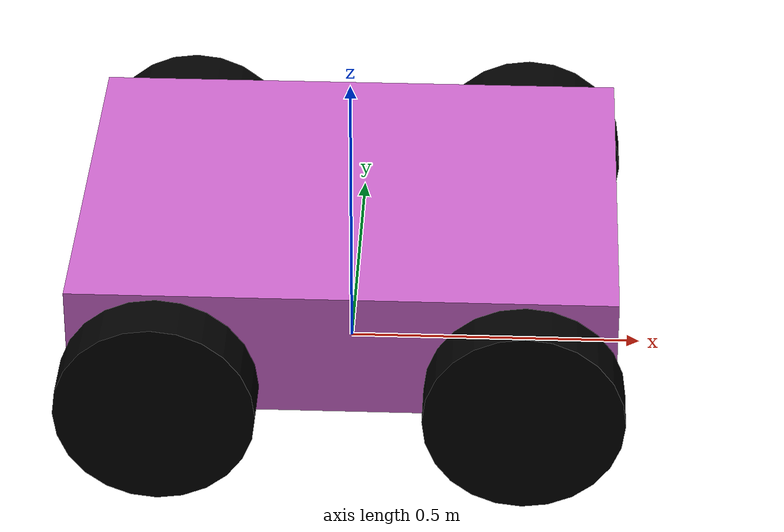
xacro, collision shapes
<?xml version="1.0"?>
<robot xmlns:xacro="http://www.ros.org/wiki/xacro" name="rover">

<xacro:property name="constant" value="0.083"/>
<xacro:property name="mass" value="1.0"/>
<xacro:property name="width" value="0.9"/>
<xacro:property name="height" value="0.22"/>
<xacro:property name="depth" value="0.7"/>

<material name="purple">
        <color rgba="0.8 0.4 0.8 1.0"/>
</material>

<material name="black">
        <color rgba="0 0 0 1"/>
</material>

<link name="base_footprint"/>

<link name="base_link">
    <inertial>
        <origin xyz="0.0 0.0 0.0" rpy="1.57 0.0 0.0"/>
        <mass value="1.0"/>
        <inertia ixx="${constant * mass * (height * height + depth * depth)}" ixy="0.0" ixz="0.0"
                 iyy="${constant * mass * (width * width + depth * depth)}" iyz="0.0"
                 izz="${constant * mass * (width * width + height * height)}"/>
    </inertial>
    <visual name="">
        <origin xyz="0.0 0.0 0.06" rpy="0.0 0.0 0.0"/>
        <geometry>
            <box size="0.9 0.7 0.22"/>
        </geometry>
        <material name="purple"/>
    </visual>
    <collision>
        <origin xyz="0.0 0.0 0.06" rpy="0.0 0.0 0.0"/>
        <geometry>
            <box size="0.9 0.7 0.22"/>
        </geometry>
    </collision>
</link>

<gazebo reference="base_link">
    <material>Gazebo/Purple</material>
</gazebo>

<joint name="base_joint" type="fixed">
    <origin xyz="0.0 0.0 0.135" rpy="0.0 0.0 0.0"/>
    <parent link="base_footprint"/>
    <child link="base_link"/>
    <axis xyz="0.0 0.0 0.0"/>
</joint>

<!-- All Wheel links and joints -->

<xacro:macro name="wheel_l" params="name x y">

    <link name="wheel_${name}_link">
        <inertial>
            <origin xyz="0 0 0" />
            <mass value="0.1" />
            <inertia ixx="${0.083 * 0.1 * (3 * 0.165 * 0.165 + 0.09 * 0.09)}" ixy="0.0" ixz="0.0"
                    iyy="${0.083 * 0.1 * (3 * 0.165 * 0.165 + 0.09 * 0.09)}" iyz="0.0"
                    izz="${0.083 * 0.1 * 0.165 * 0.165}" />
        </inertial>
        <visual name="">
            <origin xyz="0.0 0.0 0.0" rpy="0.0 0.0 0.0"/>
            <geometry>
                <mesh filename="package://mobile_robot/meshes/left_tire.stl" scale="0.005 0.005 0.005"/>
            </geometry>
            <material name="black"/>
        </visual>
        <collision>
            <origin xyz="0 0 0" rpy="1.57 0 0"/>
            <geometry>
                <cylinder length="0.09" radius="0.165"/>
            </geometry>
        </collision>
    </link>

    <joint name="wheel_${name}_joint" type="continuous">
        <origin xyz="${x} ${y} .0" rpy="0 0.0 0.0"/>
        <parent link="base_link"/>
        <child link="wheel_${name}_link"/>
        <axis xyz=".0 1.0 .0"/>
    </joint>

</xacro:macro>

<xacro:macro name="wheel_r" params="name x y">

    <link name="wheel_${name}_link">
        <inertial>
            <origin xyz="0 0 0" />
            <mass value="0.1" />
            <inertia ixx="${0.083 * 0.1 * (3 * 0.165 * 0.165 + 0.09 * 0.09)}" ixy="0.0" ixz="0.0"
                    iyy="${0.083 * 0.1 * (3 * 0.165 * 0.165 + 0.09 * 0.09)}" iyz="0.0"
                    izz="${0.083 * 0.1 * 0.165 * 0.165}" />
        </inertial>
        <visual name="">
            <origin xyz="0.0 0.0 0.0" rpy="0.0 0.0 0.0"/>
            <geometry>
                <mesh filename="package://mobile_robot/meshes/right_tire.stl" scale="0.005 0.005 0.005"/>
            </geometry>
            <material name="black"/>
        </visual>
        <collision>
            <origin xyz="0 0 0" rpy="1.57 0 0"/>
            <geometry>
                <cylinder length="0.09" radius="0.165"/>
            </geometry>
        </collision>
    </link>

    <joint name="wheel_${name}_joint" type="continuous">
        <origin xyz="${x} ${y} .0" rpy="0 0.0 0.0"/>
        <parent link="base_link"/>
        <child link="wheel_${name}_link"/>
        <axis xyz=".0 1.0 .0"/>
    </joint>

</xacro:macro>

<!-- Wheel Creating using macros -->
<xacro:wheel_r name="rear_right"  x="0.3" y =" 0.40"/>
<xacro:wheel_r name="front_right" x="-0.3" y =" 0.40"/>
<xacro:wheel_l name="front_left"  x="-0.3" y =" -0.40"/>
<xacro:wheel_l name="rear_left"   x="0.3" y =" -0.40"/>

</robot>
